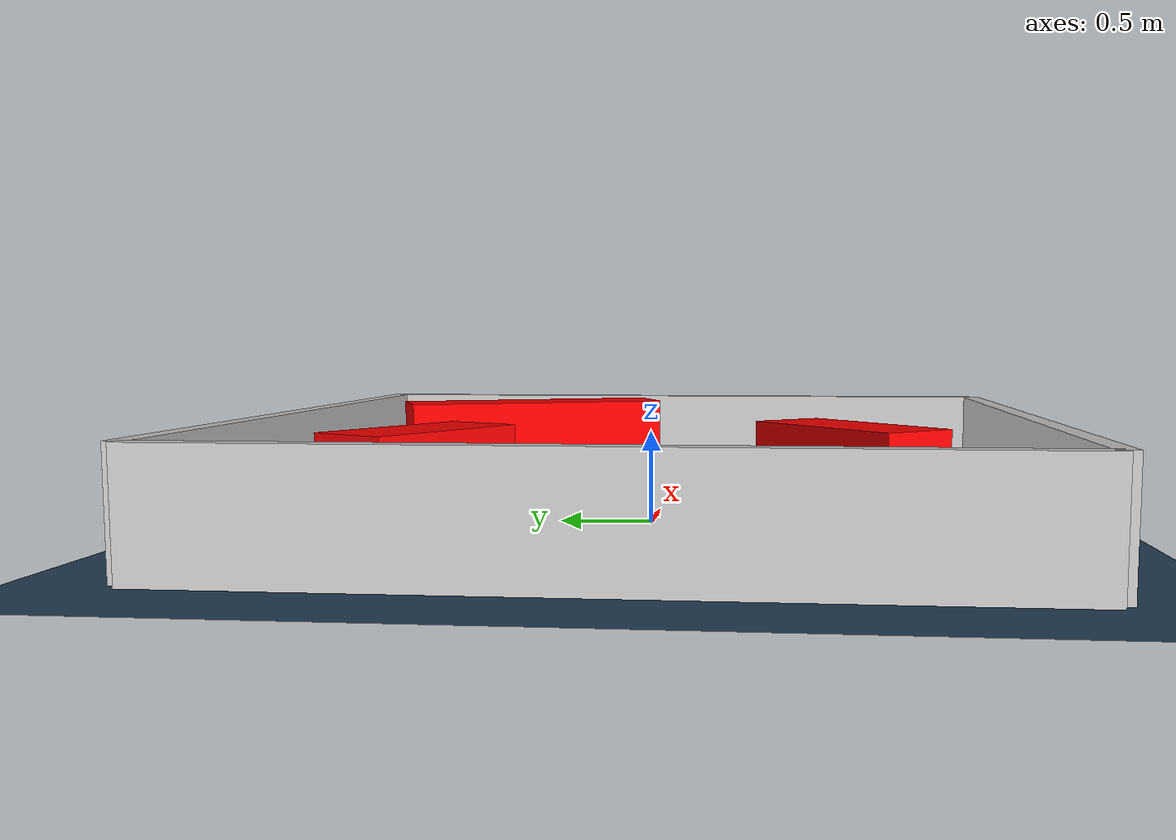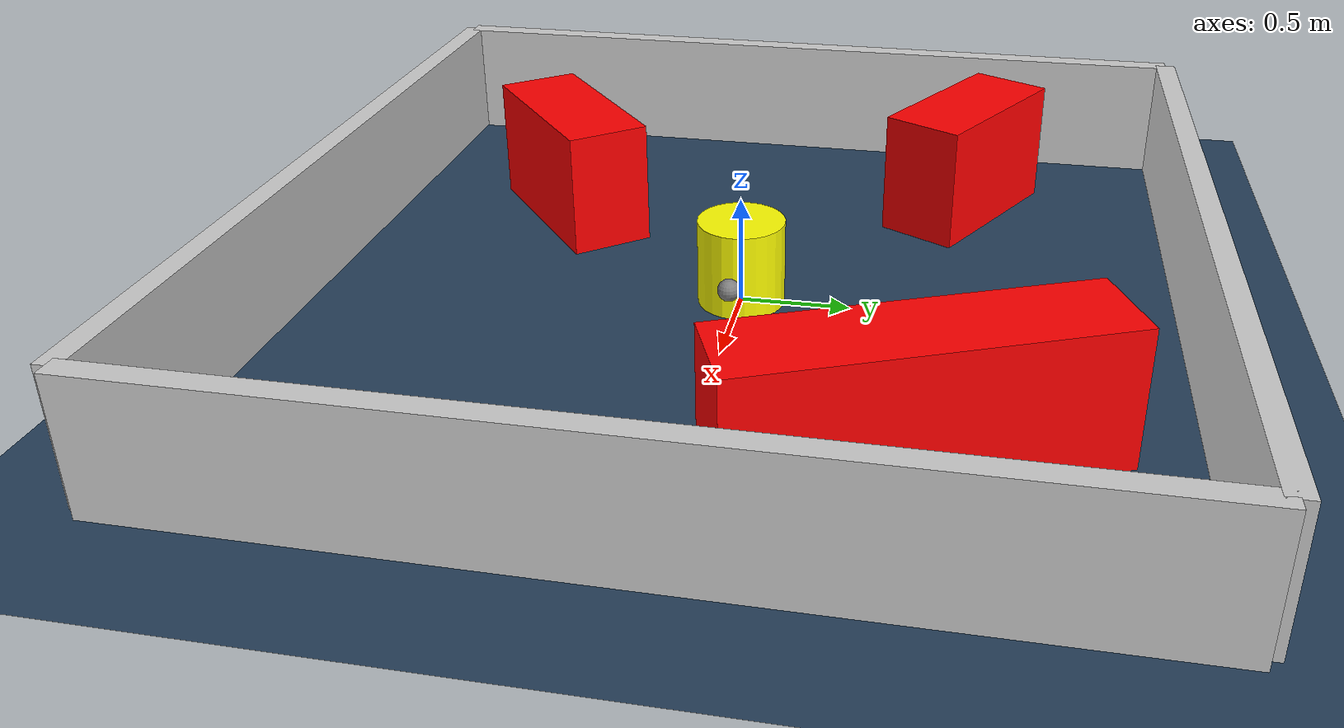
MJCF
<?xml version="1.0" ?>
<mujoco model="generated_environment">
  <option timestep="0.01" integrator="RK4" cone="elliptic"/>
  <default>
    <geom density="1"/>
  </default>
  <asset>
    <texture builtin="gradient" height="3072" rgb1="0.3 0.5 0.7" rgb2="0 0 0" type="skybox" width="512"/>
    <texture builtin="checker" height="300" mark="edge" markrgb="0.8 0.8 0.8" name="groundplane" rgb1="0.2 0.3 0.4" rgb2="0.1 0.2 0.3" type="2d" width="300"/>
    <material name="groundplane" reflectance="0.2" texrepeat="5 5" texture="groundplane" texuniform="true"/>
    <material name="robot" rgba="0.0 1.0 0.0 1"/>
  </asset>
  <worldbody>
    <light dir="0 0 -1" directional="true" pos="0 0 1.5"/>
    <geom condim="4" friction="1.0 0.005 0.001" material="groundplane" name="floor" size="0 0 0.05" type="plane"/>
    <body name="walls">
      <geom name="wall_1" condim="4" pos="-2.0 0.0 0.3" rgba="0.800000011920929 0.800000011920929 0.800000011920929 1.0" size="0.05 2.0 0.3" type="box"/>
      <geom name="wall_2" condim="4" pos="2.0 0.0 0.3" rgba="0.800000011920929 0.800000011920929 0.800000011920929 1.0" size="0.05 2.0 0.3" type="box"/>
      <geom name="wall_3" condim="4" pos="0.0 -2.0 0.3" rgba="0.800000011920929 0.800000011920929 0.800000011920929 1.0" size="2.0 0.05 0.3" type="box"/>
      <geom name="wall_4" condim="4" pos="0.0 2.0 0.3" rgba="0.800000011920929 0.800000011920929 0.800000011920929 1.0" size="2.0 0.05 0.3" type="box"/>
    </body>
    <body name="robot">
      <joint name="joint_x" type="slide" pos="0 0 0" axis="1 0 0"/>
      <joint name="joint_y" type="slide" pos="0 0 0" axis="0 1 0"/>
      <geom name="robot" type="sphere" pos="0.3 0.0 0.2" size="0.05" mass="5." friction="1.0 0.005 0.0001" condim="4" rgba="0.5 0.5 0.5 1.0"/>
      <site name="sensor_ball"/>
    </body>
    <body name="obstacle_movable_1">
      <geom name="obstacle_movable_1" condim="4" pos="0.0 0.0 0.2" euler="0 0 0.0" friction="1.0 0.005 0.001" rgba="1.0 1.0 0.0 1.0" size="0.2 0.2 0.0" type="cylinder" mass="0.1"/>
      <joint type="free"/>
    </body>
    <body name="obstacle_2_static">
      <geom name="obstacle_2_static" condim="4" pos="-0.7911843496218369 -1.0286933126759505 0.3" euler="0 0 39.70491497531076" friction="1.0 0.005 0.001" rgba="1 0 0 1" size="0.4630656818840081 0.2 0.3" type="box"/>
    </body>
    <body name="obstacle_3_static">
      <geom name="obstacle_3_static" condim="4" pos="-1.2039955174327406 0.955247523921863 0.3" euler="0 0 151.4383581491668" friction="1.0 0.005 0.001" rgba="1 0 0 1" size="0.4436756700369434 0.2 0.3" type="box"/>
    </body>
    <body name="obstacle_4_static">
      <geom name="obstacle_4_static" condim="4" pos="1.1801418876288736 0.8835309768610353 0.3" euler="0 0 293.2158471723121" friction="1.0 0.005 0.001" rgba="1 0 0 1" size="0.7942607855718948 0.2 0.3" type="box"/>
    </body>
  </worldbody>
  <actuator>
    <motor name="actuator_x" joint="joint_x" gear="1" ctrlrange="-1 1"/>
    <motor name="actuator_y" joint="joint_y" gear="1" ctrlrange="-1 1"/>
  </actuator>
</mujoco>
